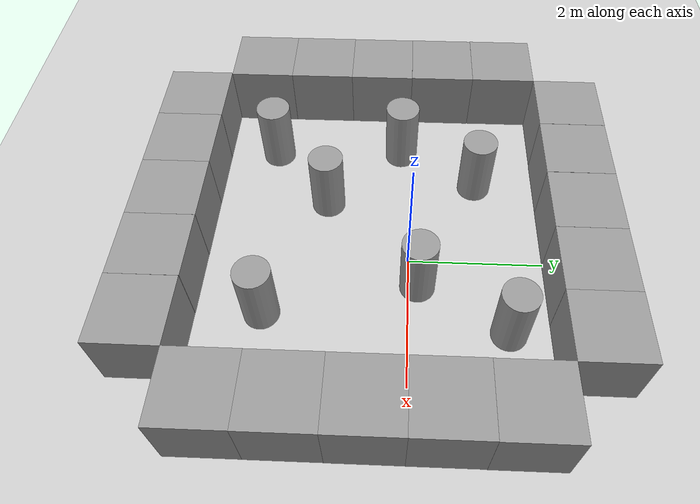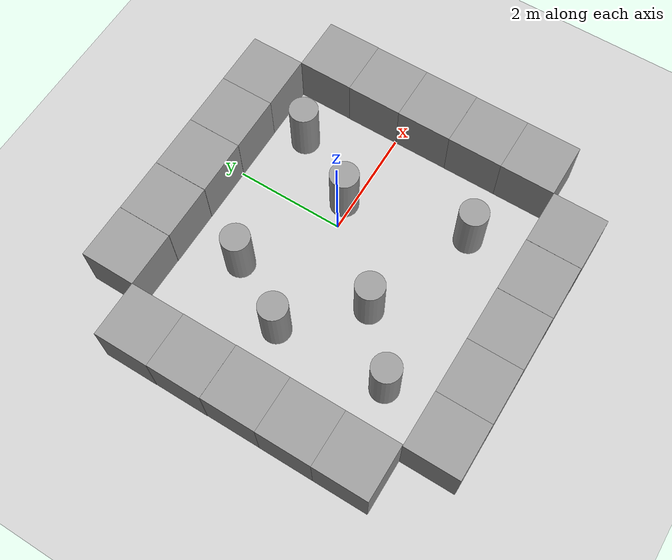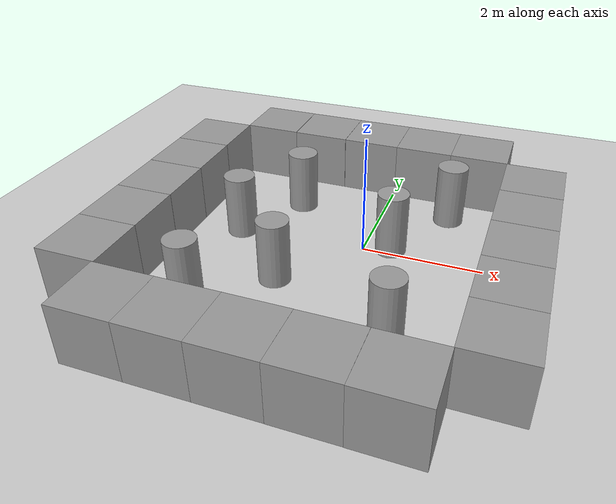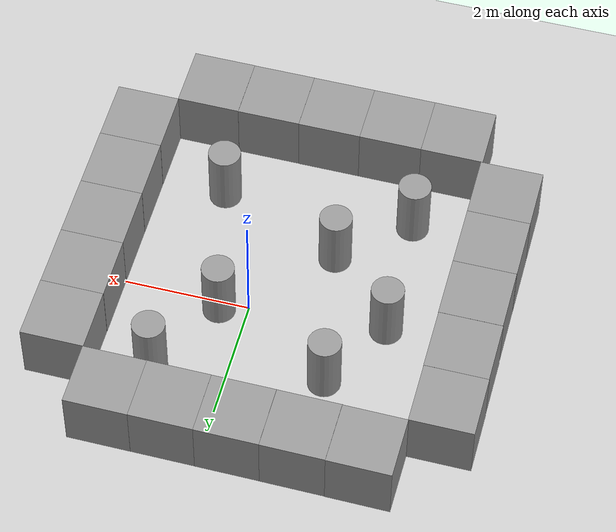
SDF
<sdf version="1.7">
 <world name="default">
  <light name="sun" type="directional">
   <pose>0 0 10 0 -0 0</pose>
   <diffuse>0.8 0.8 0.8 1</diffuse>
   <specular>0.2 0.2 0.2 1</specular>
   <attenuation>
    <range>1000</range>
    <constant>0.9</constant>
    <linear>0.01</linear>
    <quadratic>0.001</quadratic>
   </attenuation>
   <direction>-0.5 0.1 -0.9</direction>
   <spot><inner_angle>0</inner_angle><outer_angle>0</outer_angle><falloff>0</falloff></spot>
  </light>
  <model name="ground_plane">
   <static>1</static>
   <link name="link">
    <collision name="collision">
     <geometry><plane><normal>0 0 1</normal><size>100 100</size></plane></geometry>
     <surface>
      <contact><collide_bitmask>65535</collide_bitmask></contact>
      <friction><ode><mu>100</mu><mu2>50</mu2></ode></friction>
     </surface>
    </collision>
    <visual name="visual">
     <cast_shadows>0</cast_shadows>
     <geometry><plane><normal>0 0 1</normal><size>100 100</size></plane></geometry>
     <material>
      <script><uri>file://media/materials/scripts/gazebo.material</uri><name>Gazebo/Grey</name></script>
     </material>
    </visual>
   </link>
  </model>
  <gravity>0 0 -9.8</gravity>
  <magnetic_field>6e-06 2.3e-05 -4.2e-05</magnetic_field>
  <atmosphere type="adiabatic"/>
  <physics type="ode">
   <max_step_size>0.001</max_step_size>
   <real_time_factor>1</real_time_factor>
   <real_time_update_rate>1000</real_time_update_rate>
  </physics>
  <scene><ambient>0.4 0.4 0.4 1</ambient><background>0.7 0.7 0.7 1</background><shadows>1</shadows></scene>
  <spherical_coordinates>
   <surface_model>EARTH_WGS84</surface_model>
   <latitude_deg>0</latitude_deg>
   <longitude_deg>0</longitude_deg>
   <elevation>0</elevation>
   <heading_deg>0</heading_deg>
  </spherical_coordinates>
  <model name="unit_box">
   <pose>-2.50037 -3.49652 0.499995 0 -1e-05 -0.000543</pose>
   <link name="link">
    <inertial>
     <mass>1</mass>
     <inertia>
      <ixx>0.166667</ixx>
      <ixy>0</ixy>
      <ixz>0</ixz>
      <iyy>0.166667</iyy>
      <iyz>0</iyz>
      <izz>0.166667</izz>
     </inertia>
    </inertial>
    <collision name="collision"><geometry><box><size>1 1 1</size></box></geometry></collision>
    <visual name="visual">
     <geometry><box><size>1 1 1</size></box></geometry>
     <material>
      <script><name>Gazebo/Grey</name><uri>file://media/materials/scripts/gazebo.material</uri></script>
     </material>
    </visual>
   </link>
  </model>
  <model name="unit_box_clone">
   <pose>-1.50032 -3.49776 0.499995 0 1e-05 -0.000616</pose>
   <link name="link">
    <inertial>
     <mass>1</mass>
     <inertia>
      <ixx>0.166667</ixx>
      <ixy>0</ixy>
      <ixz>0</ixz>
      <iyy>0.166667</iyy>
      <iyz>0</iyz>
      <izz>0.166667</izz>
     </inertia>
    </inertial>
    <collision name="collision"><geometry><box><size>1 1 1</size></box></geometry></collision>
    <visual name="visual">
     <geometry><box><size>1 1 1</size></box></geometry>
     <material>
      <script><name>Gazebo/Grey</name><uri>file://media/materials/scripts/gazebo.material</uri></script>
     </material>
    </visual>
   </link>
  </model>
  <model name="unit_box_clone_0">
   <pose>-0.500323 -3.49895 0.499995 0 -1e-05 -0.000617</pose>
   <link name="link">
    <inertial>
     <mass>1</mass>
     <inertia>
      <ixx>0.166667</ixx>
      <ixy>0</ixy>
      <ixz>0</ixz>
      <iyy>0.166667</iyy>
      <iyz>0</iyz>
      <izz>0.166667</izz>
     </inertia>
    </inertial>
    <collision name="collision"><geometry><box><size>1 1 1</size></box></geometry></collision>
    <visual name="visual">
     <geometry><box><size>1 1 1</size></box></geometry>
     <material>
      <script><name>Gazebo/Grey</name><uri>file://media/materials/scripts/gazebo.material</uri></script>
     </material>
    </visual>
   </link>
  </model>
  <model name="unit_box_clone_1">
   <pose>0.499931 -3.50195 0.499995 0 -1e-05 -0.001129</pose>
   <link name="link">
    <inertial>
     <mass>1</mass>
     <inertia>
      <ixx>0.166667</ixx>
      <ixy>0</ixy>
      <ixz>0</ixz>
      <iyy>0.166667</iyy>
      <iyz>0</iyz>
      <izz>0.166667</izz>
     </inertia>
    </inertial>
    <collision name="collision"><geometry><box><size>1 1 1</size></box></geometry></collision>
    <visual name="visual">
     <geometry><box><size>1 1 1</size></box></geometry>
     <material>
      <script><name>Gazebo/Grey</name><uri>file://media/materials/scripts/gazebo.material</uri></script>
     </material>
    </visual>
   </link>
  </model>
  <model name="unit_box_clone_2">
   <pose>1.50067 -3.50726 0.499995 -1e-05 0 -0.002601</pose>
   <link name="link">
    <inertial>
     <mass>1</mass>
     <inertia>
      <ixx>0.166667</ixx>
      <ixy>0</ixy>
      <ixz>0</ixz>
      <iyy>0.166667</iyy>
      <iyz>0</iyz>
      <izz>0.166667</izz>
     </inertia>
    </inertial>
    <collision name="collision"><geometry><box><size>1 1 1</size></box></geometry></collision>
    <visual name="visual">
     <geometry><box><size>1 1 1</size></box></geometry>
     <material>
      <script><name>Gazebo/Grey</name><uri>file://media/materials/scripts/gazebo.material</uri></script>
     </material>
    </visual>
   </link>
  </model>
  <model name="unit_box_clone_3">
   <pose>2.49617 -2.50843 0.499995 -1e-05 -0 0.000236</pose>
   <link name="link">
    <inertial>
     <mass>1</mass>
     <inertia>
      <ixx>0.166667</ixx>
      <ixy>0</ixy>
      <ixz>0</ixz>
      <iyy>0.166667</iyy>
      <iyz>0</iyz>
      <izz>0.166667</izz>
     </inertia>
    </inertial>
    <collision name="collision"><geometry><box><size>1 1 1</size></box></geometry></collision>
    <visual name="visual">
     <geometry><box><size>1 1 1</size></box></geometry>
     <material>
      <script><name>Gazebo/Grey</name><uri>file://media/materials/scripts/gazebo.material</uri></script>
     </material>
    </visual>
   </link>
  </model>
  <model name="unit_box_clone_4">
   <pose>2.4976 -1.50843 0.499995 9e-06 -0 0.000233</pose>
   <link name="link">
    <inertial>
     <mass>1</mass>
     <inertia>
      <ixx>0.166667</ixx>
      <ixy>0</ixy>
      <ixz>0</ixz>
      <iyy>0.166667</iyy>
      <iyz>0</iyz>
      <izz>0.166667</izz>
     </inertia>
    </inertial>
    <collision name="collision"><geometry><box><size>1 1 1</size></box></geometry></collision>
    <visual name="visual">
     <geometry><box><size>1 1 1</size></box></geometry>
     <material>
      <script><name>Gazebo/Grey</name><uri>file://media/materials/scripts/gazebo.material</uri></script>
     </material>
    </visual>
   </link>
  </model>
  <model name="unit_box_clone_5">
   <pose>2.49911 -0.508416 0.499995 -1e-05 -0 0.000225</pose>
   <link name="link">
    <inertial>
     <mass>1</mass>
     <inertia>
      <ixx>0.166667</ixx>
      <ixy>0</ixy>
      <ixz>0</ixz>
      <iyy>0.166667</iyy>
      <iyz>0</iyz>
      <izz>0.166667</izz>
     </inertia>
    </inertial>
    <collision name="collision"><geometry><box><size>1 1 1</size></box></geometry></collision>
    <visual name="visual">
     <geometry><box><size>1 1 1</size></box></geometry>
     <material>
      <script><name>Gazebo/Grey</name><uri>file://media/materials/scripts/gazebo.material</uri></script>
     </material>
    </visual>
   </link>
  </model>
  <model name="unit_box_clone_6">
   <pose>2.49994 0.491581 0.499995 1e-05 0 0.000225</pose>
   <link name="link">
    <inertial>
     <mass>1</mass>
     <inertia>
      <ixx>0.166667</ixx>
      <ixy>0</ixy>
      <ixz>0</ixz>
      <iyy>0.166667</iyy>
      <iyz>0</iyz>
      <izz>0.166667</izz>
     </inertia>
    </inertial>
    <collision name="collision"><geometry><box><size>1 1 1</size></box></geometry></collision>
    <visual name="visual">
     <geometry><box><size>1 1 1</size></box></geometry>
     <material>
      <script><name>Gazebo/Grey</name><uri>file://media/materials/scripts/gazebo.material</uri></script>
     </material>
    </visual>
   </link>
  </model>
  <model name="unit_box_clone_7">
   <pose>2.50279 1.49158 0.499995 1e-05 0 0.000227</pose>
   <link name="link">
    <inertial>
     <mass>1</mass>
     <inertia>
      <ixx>0.166667</ixx>
      <ixy>0</ixy>
      <ixz>0</ixz>
      <iyy>0.166667</iyy>
      <iyz>0</iyz>
      <izz>0.166667</izz>
     </inertia>
    </inertial>
    <collision name="collision"><geometry><box><size>1 1 1</size></box></geometry></collision>
    <visual name="visual">
     <geometry><box><size>1 1 1</size></box></geometry>
     <material>
      <script><name>Gazebo/Grey</name><uri>file://media/materials/scripts/gazebo.material</uri></script>
     </material>
    </visual>
   </link>
  </model>
  <model name="unit_box_clone_8">
   <pose>1.51155 2.49169 0.499995 1e-05 -0 -0.000438</pose>
   <link name="link">
    <inertial>
     <mass>1</mass>
     <inertia>
      <ixx>0.166667</ixx>
      <ixy>0</ixy>
      <ixz>0</ixz>
      <iyy>0.166667</iyy>
      <iyz>0</iyz>
      <izz>0.166667</izz>
     </inertia>
    </inertial>
    <collision name="collision"><geometry><box><size>1 1 1</size></box></geometry></collision>
    <visual name="visual">
     <geometry><box><size>1 1 1</size></box></geometry>
     <material>
      <script><name>Gazebo/Grey</name><uri>file://media/materials/scripts/gazebo.material</uri></script>
     </material>
    </visual>
   </link>
  </model>
  <model name="unit_box_clone_9">
   <pose>0.511543 2.49087 0.499995 0 1e-05 -0.000447</pose>
   <link name="link">
    <inertial>
     <mass>1</mass>
     <inertia>
      <ixx>0.166667</ixx>
      <ixy>0</ixy>
      <ixz>0</ixz>
      <iyy>0.166667</iyy>
      <iyz>0</iyz>
      <izz>0.166667</izz>
     </inertia>
    </inertial>
    <collision name="collision"><geometry><box><size>1 1 1</size></box></geometry></collision>
    <visual name="visual">
     <geometry><box><size>1 1 1</size></box></geometry>
     <material>
      <script><name>Gazebo/Grey</name><uri>file://media/materials/scripts/gazebo.material</uri></script>
     </material>
    </visual>
   </link>
  </model>
  <model name="unit_box_clone_10">
   <pose>-0.488656 2.49288 0.499995 0 1e-05 -0.00084</pose>
   <link name="link">
    <inertial>
     <mass>1</mass>
     <inertia>
      <ixx>0.166667</ixx>
      <ixy>0</ixy>
      <ixz>0</ixz>
      <iyy>0.166667</iyy>
      <iyz>0</iyz>
      <izz>0.166667</izz>
     </inertia>
    </inertial>
    <collision name="collision"><geometry><box><size>1 1 1</size></box></geometry></collision>
    <visual name="visual">
     <geometry><box><size>1 1 1</size></box></geometry>
     <material>
      <script><name>Gazebo/Grey</name><uri>file://media/materials/scripts/gazebo.material</uri></script>
     </material>
    </visual>
   </link>
  </model>
  <model name="unit_box_clone_11">
   <pose>-1.49019 2.49667 0.499995 -0 1e-05 -0.003928</pose>
   <link name="link">
    <inertial>
     <mass>1</mass>
     <inertia>
      <ixx>0.166667</ixx>
      <ixy>0</ixy>
      <ixz>0</ixz>
      <iyy>0.166667</iyy>
      <iyz>0</iyz>
      <izz>0.166667</izz>
     </inertia>
    </inertial>
    <collision name="collision"><geometry><box><size>1 1 1</size></box></geometry></collision>
    <visual name="visual">
     <geometry><box><size>1 1 1</size></box></geometry>
     <material>
      <script><name>Gazebo/Grey</name><uri>file://media/materials/scripts/gazebo.material</uri></script>
     </material>
    </visual>
   </link>
  </model>
  <model name="unit_box_clone_12">
   <pose>-2.49118 2.50533 0.499995 1e-05 0 -0.005784</pose>
   <link name="link">
    <inertial>
     <mass>1</mass>
     <inertia>
      <ixx>0.166667</ixx>
      <ixy>0</ixy>
      <ixz>0</ixz>
      <iyy>0.166667</iyy>
      <iyz>0</iyz>
      <izz>0.166667</izz>
     </inertia>
    </inertial>
    <collision name="collision"><geometry><box><size>1 1 1</size></box></geometry></collision>
    <visual name="visual">
     <geometry><box><size>1 1 1</size></box></geometry>
     <material>
      <script><name>Gazebo/Grey</name><uri>file://media/materials/scripts/gazebo.material</uri></script>
     </material>
    </visual>
   </link>
  </model>
  <model name="unit_box_clone_13">
   <pose>-3.48519 1.50794 0.499995 -1e-05 -0 0.000475</pose>
   <link name="link">
    <inertial>
     <mass>1</mass>
     <inertia>
      <ixx>0.166667</ixx>
      <ixy>0</ixy>
      <ixz>0</ixz>
      <iyy>0.166667</iyy>
      <iyz>0</iyz>
      <izz>0.166667</izz>
     </inertia>
    </inertial>
    <collision name="collision"><geometry><box><size>1 1 1</size></box></geometry></collision>
    <visual name="visual">
     <geometry><box><size>1 1 1</size></box></geometry>
     <material>
      <script><name>Gazebo/Grey</name><uri>file://media/materials/scripts/gazebo.material</uri></script>
     </material>
    </visual>
   </link>
  </model>
  <model name="unit_box_clone_14">
   <pose>-3.48077 0.507869 0.499995 0 1e-05 0.000587</pose>
   <link name="link">
    <inertial>
     <mass>1</mass>
     <inertia>
      <ixx>0.166667</ixx>
      <ixy>0</ixy>
      <ixz>0</ixz>
      <iyy>0.166667</iyy>
      <iyz>0</iyz>
      <izz>0.166667</izz>
     </inertia>
    </inertial>
    <collision name="collision"><geometry><box><size>1 1 1</size></box></geometry></collision>
    <visual name="visual">
     <geometry><box><size>1 1 1</size></box></geometry>
     <material>
      <script><name>Gazebo/Grey</name><uri>file://media/materials/scripts/gazebo.material</uri></script>
     </material>
    </visual>
   </link>
  </model>
  <model name="unit_box_clone_15">
   <pose>-3.47472 -0.492496 0.499995 1e-05 -0 0.001278</pose>
   <link name="link">
    <inertial>
     <mass>1</mass>
     <inertia>
      <ixx>0.166667</ixx>
      <ixy>0</ixy>
      <ixz>0</ixz>
      <iyy>0.166667</iyy>
      <iyz>0</iyz>
      <izz>0.166667</izz>
     </inertia>
    </inertial>
    <collision name="collision"><geometry><box><size>1 1 1</size></box></geometry></collision>
    <visual name="visual">
     <geometry><box><size>1 1 1</size></box></geometry>
     <material>
      <script><name>Gazebo/Grey</name><uri>file://media/materials/scripts/gazebo.material</uri></script>
     </material>
    </visual>
   </link>
  </model>
  <model name="unit_box_clone_16">
   <pose>-3.47475 -1.49251 0.499995 1e-05 -0 0.001277</pose>
   <link name="link">
    <inertial>
     <mass>1</mass>
     <inertia>
      <ixx>0.166667</ixx>
      <ixy>0</ixy>
      <ixz>0</ixz>
      <iyy>0.166667</iyy>
      <iyz>0</iyz>
      <izz>0.166667</izz>
     </inertia>
    </inertial>
    <collision name="collision"><geometry><box><size>1 1 1</size></box></geometry></collision>
    <visual name="visual">
     <geometry><box><size>1 1 1</size></box></geometry>
     <material>
      <script><name>Gazebo/Grey</name><uri>file://media/materials/scripts/gazebo.material</uri></script>
     </material>
    </visual>
   </link>
  </model>
  <model name="unit_box_clone_17">
   <pose>-3.47336 -2.4925 0.5 0 -0 0.001275</pose>
   <link name="link">
    <inertial>
     <mass>1</mass>
     <inertia>
      <ixx>0.166667</ixx>
      <ixy>0</ixy>
      <ixz>0</ixz>
      <iyy>0.166667</iyy>
      <iyz>0</iyz>
      <izz>0.166667</izz>
     </inertia>
    </inertial>
    <collision name="collision"><geometry><box><size>1 1 1</size></box></geometry></collision>
    <visual name="visual">
     <geometry><box><size>1 1 1</size></box></geometry>
     <material>
      <script><name>Gazebo/Grey</name><uri>file://media/materials/scripts/gazebo.material</uri></script>
     </material>
    </visual>
   </link>
  </model>
  <model name="unit_cylinder">
   <pose>-1.47625 1.04444 0.538804 2e-06 -1e-06 -2e-06</pose>
   <link name="link">
    <inertial>
     <mass>1</mass>
     <inertia><ixx>0.145833</ixx><ixy>0</ixy><ixz>0</ixz><iyy>0.145833</iyy><iyz>0</iyz><izz>0.125</izz></inertia>
    </inertial>
    <collision name="collision">
     <geometry><cylinder><radius>0.258259</radius><length>1.07762</length></cylinder></geometry>
    </collision>
    <visual name="visual">
     <geometry><cylinder><radius>0.258259</radius><length>1.07762</length></cylinder></geometry>
     <material>
      <script><name>Gazebo/Grey</name><uri>file://media/materials/scripts/gazebo.material</uri></script>
     </material>
    </visual>
   </link>
  </model>
  <model name="unit_cylinder_clone">
   <pose>0.44133 0.136324 0.538802 0 -0 0</pose>
   <link name="link">
    <inertial>
     <mass>1</mass>
     <inertia><ixx>0.145833</ixx><ixy>0</ixy><ixz>0</ixz><iyy>0.145833</iyy><iyz>0</iyz><izz>0.125</izz></inertia>
    </inertial>
    <collision name="collision">
     <geometry><cylinder><radius>0.258259</radius><length>1.07762</length></cylinder></geometry>
    </collision>
    <visual name="visual">
     <geometry><cylinder><radius>0.258259</radius><length>1.07762</length></cylinder></geometry>
     <material>
      <script><name>Gazebo/Grey</name><uri>file://media/materials/scripts/gazebo.material</uri></script>
     </material>
    </visual>
   </link>
  </model>
  <model name="unit_cylinder_clone_0">
   <pose>-1.05682 -1.27031 0.538808 0 -0 0</pose>
   <link name="link">
    <inertial>
     <mass>1</mass>
     <inertia><ixx>0.145833</ixx><ixy>0</ixy><ixz>0</ixz><iyy>0.145833</iyy><iyz>0</iyz><izz>0.125</izz></inertia>
    </inertial>
    <collision name="collision">
     <geometry><cylinder><radius>0.258259</radius><length>1.07762</length></cylinder></geometry>
    </collision>
    <visual name="visual">
     <geometry><cylinder><radius>0.258259</radius><length>1.07762</length></cylinder></geometry>
     <material>
      <script><name>Gazebo/Grey</name><uri>file://media/materials/scripts/gazebo.material</uri></script>
     </material>
    </visual>
   </link>
  </model>
  <model name="unit_cylinder_clone_1">
   <pose>0.958399 -2.06091 0.538802 0 -0 0</pose>
   <link name="link">
    <inertial>
     <mass>1</mass>
     <inertia><ixx>0.145833</ixx><ixy>0</ixy><ixz>0</ixz><iyy>0.145833</iyy><iyz>0</iyz><izz>0.125</izz></inertia>
    </inertial>
    <collision name="collision">
     <geometry><cylinder><radius>0.258259</radius><length>1.07762</length></cylinder></geometry>
    </collision>
    <visual name="visual">
     <geometry><cylinder><radius>0.258259</radius><length>1.07762</length></cylinder></geometry>
     <material>
      <script><name>Gazebo/Grey</name><uri>file://media/materials/scripts/gazebo.material</uri></script>
     </material>
    </visual>
   </link>
  </model>
  <model name="unit_cylinder_clone_2">
   <pose>-2.1579 -0.136413 0.538808 -0 -0 -1e-06</pose>
   <link name="link">
    <inertial>
     <mass>1</mass>
     <inertia><ixx>0.145833</ixx><ixy>0</ixy><ixz>0</ixz><iyy>0.145833</iyy><iyz>0</iyz><izz>0.125</izz></inertia>
    </inertial>
    <collision name="collision">
     <geometry><cylinder><radius>0.258259</radius><length>1.07762</length></cylinder></geometry>
    </collision>
    <visual name="visual">
     <geometry><cylinder><radius>0.258259</radius><length>1.07762</length></cylinder></geometry>
     <material>
      <script><name>Gazebo/Grey</name><uri>file://media/materials/scripts/gazebo.material</uri></script>
     </material>
    </visual>
   </link>
  </model>
  <model name="unit_cylinder_clone_3">
   <pose>-2.09522 -2.18672 0.538802 1e-06 0 -2e-06</pose>
   <link name="link">
    <inertial>
     <mass>1</mass>
     <inertia><ixx>0.145833</ixx><ixy>0</ixy><ixz>0</ixz><iyy>0.145833</iyy><iyz>0</iyz><izz>0.125</izz></inertia>
    </inertial>
    <collision name="collision">
     <geometry><cylinder><radius>0.258259</radius><length>1.07762</length></cylinder></geometry>
    </collision>
    <visual name="visual">
     <geometry><cylinder><radius>0.258259</radius><length>1.07762</length></cylinder></geometry>
     <material>
      <script><name>Gazebo/Grey</name><uri>file://media/materials/scripts/gazebo.material</uri></script>
     </material>
    </visual>
   </link>
  </model>
  <model name="unit_cylinder_clone_4">
   <pose>1.16364 1.40635 0.538808 -0 -0 -1e-06</pose>
   <link name="link">
    <inertial>
     <mass>1</mass>
     <inertia><ixx>0.145833</ixx><ixy>0</ixy><ixz>0</ixz><iyy>0.145833</iyy><iyz>0</iyz><izz>0.125</izz></inertia>
    </inertial>
    <collision name="collision">
     <geometry><cylinder><radius>0.258259</radius><length>1.07762</length></cylinder></geometry>
    </collision>
    <visual name="visual">
     <geometry><cylinder><radius>0.258259</radius><length>1.07762</length></cylinder></geometry>
     <material>
      <script><name>Gazebo/Grey</name><uri>file://media/materials/scripts/gazebo.material</uri></script>
     </material>
    </visual>
   </link>
  </model>
 </world>
</sdf>
